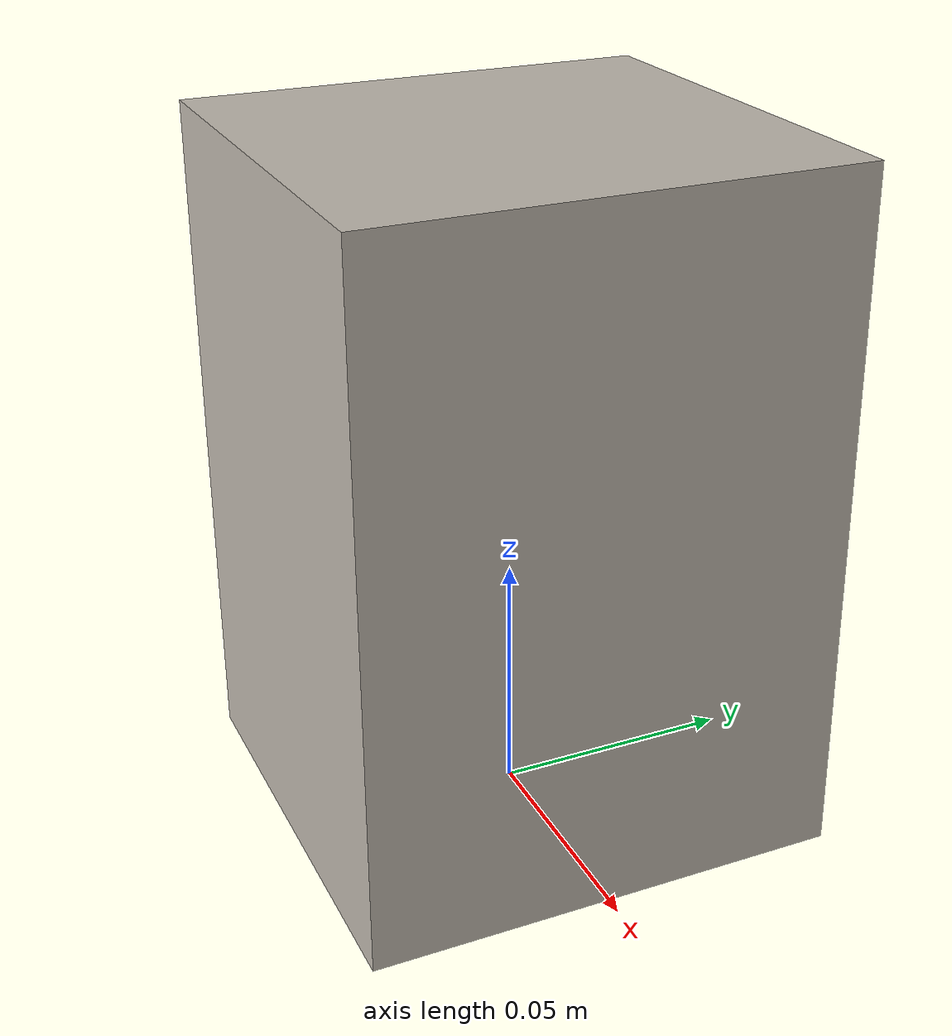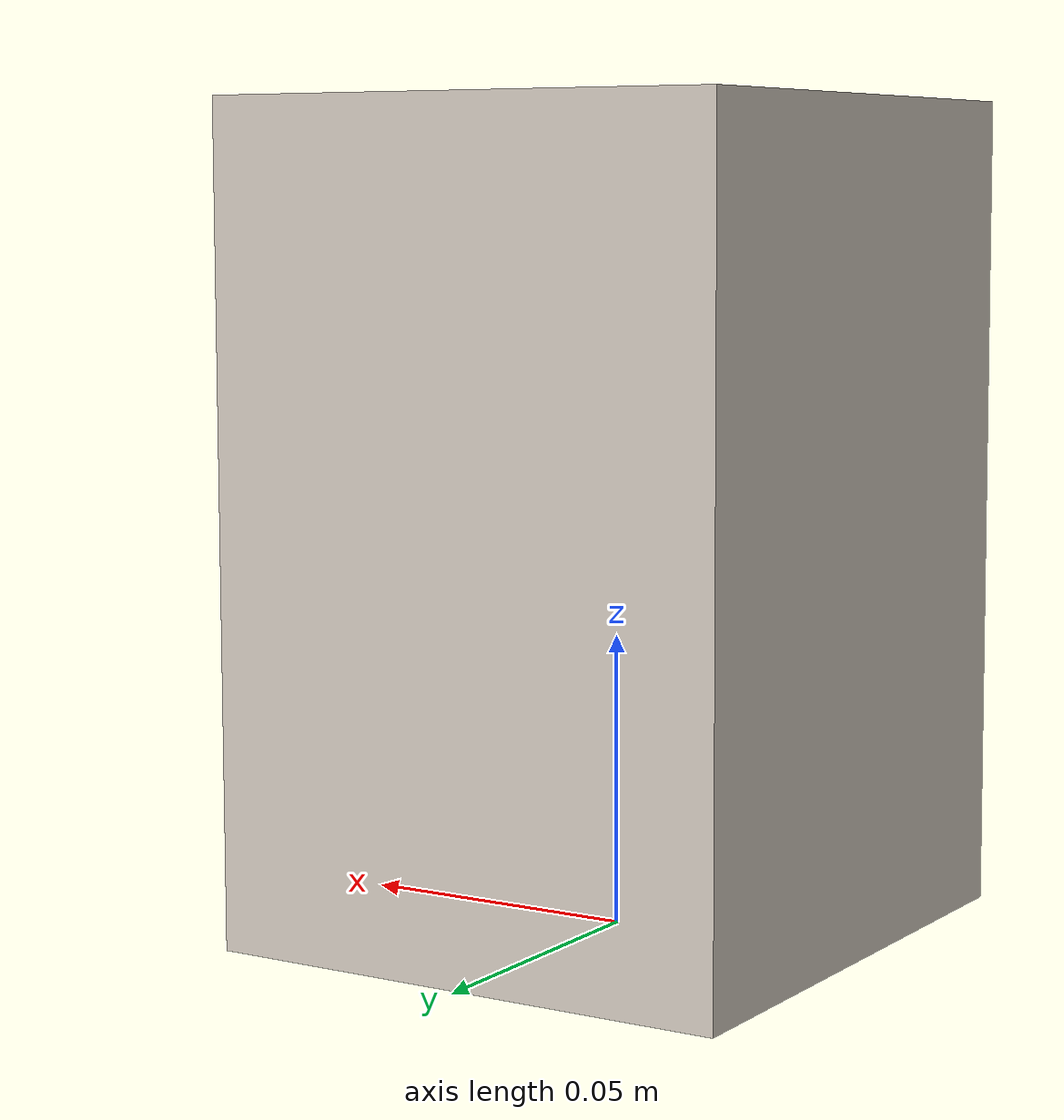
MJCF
<mujoco model="pop_tarts">
  <compiler angle="radian"/>

  <asset>
    <texture name="pop_tarts_tex" type="2d" file="pop_tarts_visual_0.png"/>
    <material name="pop_tarts_mat" texture="pop_tarts_tex"/>
  </asset>

  <worldbody>
    <body name="pop_tarts" pos="0 0 0.0703">
      <freejoint name="pop_tarts_joint"/>

      <!-- Collision geometry -->
      <geom name="pop_tarts_collision"
            type="box"
            size="0.0463 0.0487 0.0703"
            mass="0.35"
            friction="0.7 0.005 0.0001"
            contype="1"
            conaffinity="1"
            rgba="0 0 0 0"/>

      <!-- Visual: textured box (replaces scanned mesh whose texture was rotated) -->
      <geom name="pop_tarts_visual"
            type="box"
            size="0.0463 0.0487 0.0703"
            material="pop_tarts_mat"
            contype="0"
            conaffinity="0"/>
    </body>
  </worldbody>
</mujoco>
